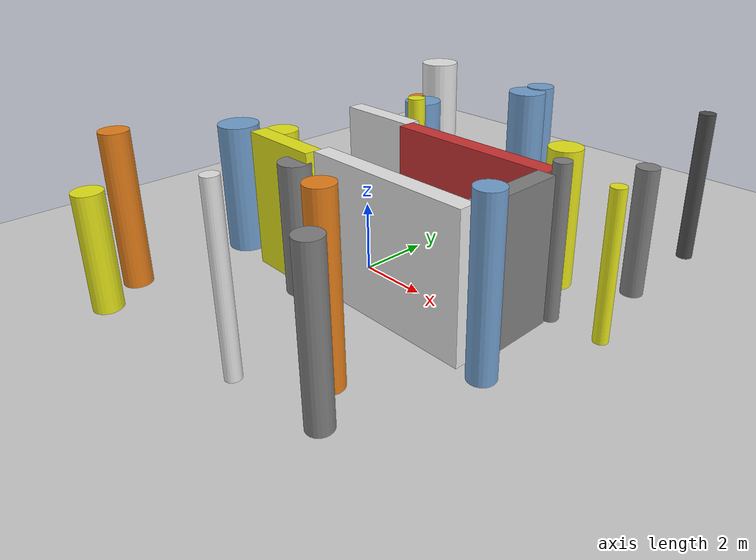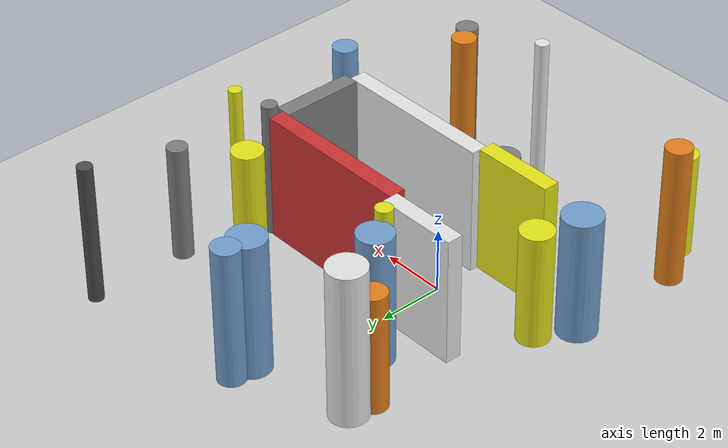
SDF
<?xml version='1.0'?>
<sdf version='1.6'>
  <world name='routeA_rl_v1__dense_recovery__rl_val__cul_de_sac_trap__000105'>
    <!-- Sun light -->
    <light name='sun' type='directional'>
      <cast_shadows>1</cast_shadows>
      <pose>0 0 10 0 0 0</pose>
      <diffuse>0.8 0.8 0.8 1</diffuse>
      <specular>0.2 0.2 0.2 1</specular>
      <attenuation>
        <range>1000</range>
        <constant>0.9</constant>
        <linear>0.01</linear>
        <quadratic>0.001</quadratic>
      </attenuation>
      <direction>-0.5 0.1 -0.9</direction>
    </light>

    <!-- Ground plane -->
    <model name='ground_plane'>
      <static>1</static>
      <link name='link'>
        <collision name='collision'>
          <geometry>
            <plane>
              <normal>0 0 1</normal>
              <size>100 100</size>
            </plane>
          </geometry>
          <surface>
            <contact>
              <collide_bitmask>65535</collide_bitmask>
              <ode/>
            </contact>
            <friction>
              <ode>
                <mu>100</mu>
                <mu2>50</mu2>
              </ode>
              <torsional><ode/></torsional>
            </friction>
            <bounce/>
          </surface>
          <max_contacts>10</max_contacts>
        </collision>
        <visual name='visual'>
          <cast_shadows>0</cast_shadows>
          <geometry>
            <plane>
              <normal>0 0 1</normal>
              <size>100 100</size>
            </plane>
          </geometry>
          <material>
            <script>
              <uri>file://media/materials/scripts/gazebo.material</uri>
              <n>Gazebo/Grey</n>
            </script>
          </material>
        </visual>
      </link>
    </model>

    <!-- Environment -->
    <magnetic_field>6e-06 2.3e-05 -4.2e-05</magnetic_field>
    <atmosphere type='adiabatic'/>
    <physics name='default_physics' default='0' type='ode'>
      <gravity>0 0 -9.8</gravity>
      <max_step_size>0.004</max_step_size>
      <real_time_factor>1</real_time_factor>
      <real_time_update_rate>250</real_time_update_rate>
    </physics>
    <scene>
      <ambient>0.4 0.4 0.4 1</ambient>
      <background>0.7 0.7 0.7 1</background>
      <shadows>1</shadows>
    </scene>
    <wind/>
    <spherical_coordinates>
      <surface_model>EARTH_WGS84</surface_model>
      <latitude_deg>0</latitude_deg>
      <longitude_deg>0</longitude_deg>
      <elevation>0</elevation>
      <heading_deg>0</heading_deg>
    </spherical_coordinates>

    <!-- ============ OBSTACLES (25) ============ -->
    <model name='trap_side_l'>
      <static>1</static>
      <link name='link'>
        <visual name='visual'>
          <geometry>
            <box>
              <size>5.0000 0.5000 4.0000</size>
            </box>
          </geometry>
          <material>
            <script>
              <n>Gazebo/White</n>
              <uri>file://media/materials/scripts/gazebo.material</uri>
            </script>
            <ambient>0.9 0.9 0.9 1</ambient>
          </material>
        </visual>
        <collision name='collision'>
          <geometry>
            <box>
              <size>5.0000 0.5000 4.0000</size>
            </box>
          </geometry>
          <max_contacts>10</max_contacts>
          <surface>
            <contact><ode/></contact>
            <bounce/>
            <friction>
              <ode><mu>1</mu><mu2>1</mu2></ode>
              <torsional><ode/></torsional>
            </friction>
          </surface>
        </collision>
      </link>
      <pose>2.5000 -1.5000 2.0000 0 0 0.0000</pose>
    </model>

    <model name='trap_side_r'>
      <static>1</static>
      <link name='link'>
        <visual name='visual'>
          <geometry>
            <box>
              <size>5.0000 0.5000 4.0000</size>
            </box>
          </geometry>
          <material>
            <script>
              <n>Gazebo/Red</n>
              <uri>file://media/materials/scripts/gazebo.material</uri>
            </script>
            <ambient>0.8 0.2 0.2 1</ambient>
          </material>
        </visual>
        <collision name='collision'>
          <geometry>
            <box>
              <size>5.0000 0.5000 4.0000</size>
            </box>
          </geometry>
          <max_contacts>10</max_contacts>
          <surface>
            <contact><ode/></contact>
            <bounce/>
            <friction>
              <ode><mu>1</mu><mu2>1</mu2></ode>
              <torsional><ode/></torsional>
            </friction>
          </surface>
        </collision>
      </link>
      <pose>2.5000 1.5000 2.0000 0 0 0.0000</pose>
    </model>

    <model name='trap_back'>
      <static>1</static>
      <link name='link'>
        <visual name='visual'>
          <geometry>
            <box>
              <size>0.5000 2.5000 4.0000</size>
            </box>
          </geometry>
          <material>
            <script>
              <n>Gazebo/Grey</n>
              <uri>file://media/materials/scripts/gazebo.material</uri>
            </script>
            <ambient>0.5 0.5 0.5 1</ambient>
          </material>
        </visual>
        <collision name='collision'>
          <geometry>
            <box>
              <size>0.5000 2.5000 4.0000</size>
            </box>
          </geometry>
          <max_contacts>10</max_contacts>
          <surface>
            <contact><ode/></contact>
            <bounce/>
            <friction>
              <ode><mu>1</mu><mu2>1</mu2></ode>
              <torsional><ode/></torsional>
            </friction>
          </surface>
        </collision>
      </link>
      <pose>5.0000 0.0000 2.0000 0 0 0.0000</pose>
    </model>

    <model name='trap_funnel_l'>
      <static>1</static>
      <link name='link'>
        <visual name='visual'>
          <geometry>
            <box>
              <size>2.5000 0.5000 4.0000</size>
            </box>
          </geometry>
          <material>
            <script>
              <n>Gazebo/Yellow</n>
              <uri>file://media/materials/scripts/gazebo.material</uri>
            </script>
            <ambient>0.9 0.9 0.1 1</ambient>
          </material>
        </visual>
        <collision name='collision'>
          <geometry>
            <box>
              <size>2.5000 0.5000 4.0000</size>
            </box>
          </geometry>
          <max_contacts>10</max_contacts>
          <surface>
            <contact><ode/></contact>
            <bounce/>
            <friction>
              <ode><mu>1</mu><mu2>1</mu2></ode>
              <torsional><ode/></torsional>
            </friction>
          </surface>
        </collision>
      </link>
      <pose>-1.2500 -1.7500 2.0000 0 0 0.0000</pose>
    </model>

    <model name='trap_funnel_r'>
      <static>1</static>
      <link name='link'>
        <visual name='visual'>
          <geometry>
            <box>
              <size>2.5000 0.5000 4.0000</size>
            </box>
          </geometry>
          <material>
            <script>
              <n>Gazebo/White</n>
              <uri>file://media/materials/scripts/gazebo.material</uri>
            </script>
            <ambient>0.9 0.9 0.9 1</ambient>
          </material>
        </visual>
        <collision name='collision'>
          <geometry>
            <box>
              <size>2.5000 0.5000 4.0000</size>
            </box>
          </geometry>
          <max_contacts>10</max_contacts>
          <surface>
            <contact><ode/></contact>
            <bounce/>
            <friction>
              <ode><mu>1</mu><mu2>1</mu2></ode>
              <torsional><ode/></torsional>
            </friction>
          </surface>
        </collision>
      </link>
      <pose>-1.2500 1.7500 2.0000 0 0 0.0000</pose>
    </model>

    <model name='trap_scatter_0'>
      <static>1</static>
      <link name='link'>
        <visual name='visual'>
          <geometry>
            <cylinder>
              <radius>0.2274</radius>
              <length>4.4171</length>
            </cylinder>
          </geometry>
          <material>
            <script>
              <n>Gazebo/DarkGrey</n>
              <uri>file://media/materials/scripts/gazebo.material</uri>
            </script>
            <ambient>0.3 0.3 0.3 1</ambient>
          </material>
        </visual>
        <collision name='collision'>
          <geometry>
            <cylinder>
              <radius>0.2274</radius>
              <length>4.4171</length>
            </cylinder>
          </geometry>
          <max_contacts>10</max_contacts>
          <surface>
            <contact><ode/></contact>
            <bounce/>
            <friction>
              <ode><mu>1</mu><mu2>1</mu2></ode>
              <torsional><ode/></torsional>
            </friction>
          </surface>
        </collision>
      </link>
      <pose>6.0343 7.2273 2.2085 0 0 0.0000</pose>
    </model>

    <model name='trap_scatter_1'>
      <static>1</static>
      <link name='link'>
        <visual name='visual'>
          <geometry>
            <cylinder>
              <radius>0.3998</radius>
              <length>4.4190</length>
            </cylinder>
          </geometry>
          <material>
            <script>
              <n>Gazebo/Orange</n>
              <uri>file://media/materials/scripts/gazebo.material</uri>
            </script>
            <ambient>0.9 0.5 0.1 1</ambient>
          </material>
        </visual>
        <collision name='collision'>
          <geometry>
            <cylinder>
              <radius>0.3998</radius>
              <length>4.4190</length>
            </cylinder>
          </geometry>
          <max_contacts>10</max_contacts>
          <surface>
            <contact><ode/></contact>
            <bounce/>
            <friction>
              <ode><mu>1</mu><mu2>1</mu2></ode>
              <torsional><ode/></torsional>
            </friction>
          </surface>
        </collision>
      </link>
      <pose>-3.9107 -5.1439 2.2095 0 0 0.0000</pose>
    </model>

    <model name='trap_scatter_2'>
      <static>1</static>
      <link name='link'>
        <visual name='visual'>
          <geometry>
            <cylinder>
              <radius>0.2564</radius>
              <length>4.4281</length>
            </cylinder>
          </geometry>
          <material>
            <script>
              <n>Gazebo/Yellow</n>
              <uri>file://media/materials/scripts/gazebo.material</uri>
            </script>
            <ambient>0.9 0.9 0.1 1</ambient>
          </material>
        </visual>
        <collision name='collision'>
          <geometry>
            <cylinder>
              <radius>0.2564</radius>
              <length>4.4281</length>
            </cylinder>
          </geometry>
          <max_contacts>10</max_contacts>
          <surface>
            <contact><ode/></contact>
            <bounce/>
            <friction>
              <ode><mu>1</mu><mu2>1</mu2></ode>
              <torsional><ode/></torsional>
            </friction>
          </surface>
        </collision>
      </link>
      <pose>-0.6782 2.5787 2.2141 0 0 0.0000</pose>
    </model>

    <model name='trap_scatter_3'>
      <static>1</static>
      <link name='link'>
        <visual name='visual'>
          <geometry>
            <cylinder>
              <radius>0.5699</radius>
              <length>4.3054</length>
            </cylinder>
          </geometry>
          <material>
            <script>
              <n>Gazebo/Blue</n>
              <uri>file://media/materials/scripts/gazebo.material</uri>
            </script>
            <ambient>0.447 0.624 0.812 1</ambient>
          </material>
        </visual>
        <collision name='collision'>
          <geometry>
            <cylinder>
              <radius>0.5699</radius>
              <length>4.3054</length>
            </cylinder>
          </geometry>
          <max_contacts>10</max_contacts>
          <surface>
            <contact><ode/></contact>
            <bounce/>
            <friction>
              <ode><mu>1</mu><mu2>1</mu2></ode>
              <torsional><ode/></torsional>
            </friction>
          </surface>
        </collision>
      </link>
      <pose>0.8698 5.9080 2.1527 0 0 0.0000</pose>
    </model>

    <model name='trap_scatter_5'>
      <static>1</static>
      <link name='link'>
        <visual name='visual'>
          <geometry>
            <cylinder>
              <radius>0.2108</radius>
              <length>4.9063</length>
            </cylinder>
          </geometry>
          <material>
            <script>
              <n>Gazebo/White</n>
              <uri>file://media/materials/scripts/gazebo.material</uri>
            </script>
            <ambient>0.9 0.9 0.9 1</ambient>
          </material>
        </visual>
        <collision name='collision'>
          <geometry>
            <cylinder>
              <radius>0.2108</radius>
              <length>4.9063</length>
            </cylinder>
          </geometry>
          <max_contacts>10</max_contacts>
          <surface>
            <contact><ode/></contact>
            <bounce/>
            <friction>
              <ode><mu>1</mu><mu2>1</mu2></ode>
              <torsional><ode/></torsional>
            </friction>
          </surface>
        </collision>
      </link>
      <pose>1.7169 -5.5528 2.4532 0 0 0.0000</pose>
    </model>

    <model name='trap_scatter_6'>
      <static>1</static>
      <link name='link'>
        <visual name='visual'>
          <geometry>
            <cylinder>
              <radius>0.3734</radius>
              <length>4.6574</length>
            </cylinder>
          </geometry>
          <material>
            <script>
              <n>Gazebo/Blue</n>
              <uri>file://media/materials/scripts/gazebo.material</uri>
            </script>
            <ambient>0.447 0.624 0.812 1</ambient>
          </material>
        </visual>
        <collision name='collision'>
          <geometry>
            <cylinder>
              <radius>0.3734</radius>
              <length>4.6574</length>
            </cylinder>
          </geometry>
          <max_contacts>10</max_contacts>
          <surface>
            <contact><ode/></contact>
            <bounce/>
            <friction>
              <ode><mu>1</mu><mu2>1</mu2></ode>
              <torsional><ode/></torsional>
            </friction>
          </surface>
        </collision>
      </link>
      <pose>5.6079 -1.5673 2.3287 0 0 0.0000</pose>
    </model>

    <model name='trap_scatter_7'>
      <static>1</static>
      <link name='link'>
        <visual name='visual'>
          <geometry>
            <cylinder>
              <radius>0.4994</radius>
              <length>3.5645</length>
            </cylinder>
          </geometry>
          <material>
            <script>
              <n>Gazebo/Yellow</n>
              <uri>file://media/materials/scripts/gazebo.material</uri>
            </script>
            <ambient>0.9 0.9 0.1 1</ambient>
          </material>
        </visual>
        <collision name='collision'>
          <geometry>
            <cylinder>
              <radius>0.4994</radius>
              <length>3.5645</length>
            </cylinder>
          </geometry>
          <max_contacts>10</max_contacts>
          <surface>
            <contact><ode/></contact>
            <bounce/>
            <friction>
              <ode><mu>1</mu><mu2>1</mu2></ode>
              <torsional><ode/></torsional>
            </friction>
          </surface>
        </collision>
      </link>
      <pose>-3.2209 -0.5210 1.7823 0 0 0.0000</pose>
    </model>

    <model name='trap_scatter_10'>
      <static>1</static>
      <link name='link'>
        <visual name='visual'>
          <geometry>
            <cylinder>
              <radius>0.5740</radius>
              <length>4.8155</length>
            </cylinder>
          </geometry>
          <material>
            <script>
              <n>Gazebo/White</n>
              <uri>file://media/materials/scripts/gazebo.material</uri>
            </script>
            <ambient>0.9 0.9 0.9 1</ambient>
          </material>
        </visual>
        <collision name='collision'>
          <geometry>
            <cylinder>
              <radius>0.5740</radius>
              <length>4.8155</length>
            </cylinder>
          </geometry>
          <max_contacts>10</max_contacts>
          <surface>
            <contact><ode/></contact>
            <bounce/>
            <friction>
              <ode><mu>1</mu><mu2>1</mu2></ode>
              <torsional><ode/></torsional>
            </friction>
          </surface>
        </collision>
      </link>
      <pose>-2.2923 5.2637 2.4078 0 0 0.0000</pose>
    </model>

    <model name='trap_scatter_11'>
      <static>1</static>
      <link name='link'>
        <visual name='visual'>
          <geometry>
            <cylinder>
              <radius>0.3076</radius>
              <length>3.6488</length>
            </cylinder>
          </geometry>
          <material>
            <script>
              <n>Gazebo/Grey</n>
              <uri>file://media/materials/scripts/gazebo.material</uri>
            </script>
            <ambient>0.5 0.5 0.5 1</ambient>
          </material>
        </visual>
        <collision name='collision'>
          <geometry>
            <cylinder>
              <radius>0.3076</radius>
              <length>3.6488</length>
            </cylinder>
          </geometry>
          <max_contacts>10</max_contacts>
          <surface>
            <contact><ode/></contact>
            <bounce/>
            <friction>
              <ode><mu>1</mu><mu2>1</mu2></ode>
              <torsional><ode/></torsional>
            </friction>
          </surface>
        </collision>
      </link>
      <pose>6.0272 4.1903 1.8244 0 0 0.0000</pose>
    </model>

    <model name='trap_scatter_12'>
      <static>1</static>
      <link name='link'>
        <visual name='visual'>
          <geometry>
            <cylinder>
              <radius>0.3643</radius>
              <length>4.8505</length>
            </cylinder>
          </geometry>
          <material>
            <script>
              <n>Gazebo/Orange</n>
              <uri>file://media/materials/scripts/gazebo.material</uri>
            </script>
            <ambient>0.9 0.5 0.1 1</ambient>
          </material>
        </visual>
        <collision name='collision'>
          <geometry>
            <cylinder>
              <radius>0.3643</radius>
              <length>4.8505</length>
            </cylinder>
          </geometry>
          <max_contacts>10</max_contacts>
          <surface>
            <contact><ode/></contact>
            <bounce/>
            <friction>
              <ode><mu>1</mu><mu2>1</mu2></ode>
              <torsional><ode/></torsional>
            </friction>
          </surface>
        </collision>
      </link>
      <pose>3.4568 -4.1690 2.4252 0 0 0.0000</pose>
    </model>

    <model name='trap_scatter_13'>
      <static>1</static>
      <link name='link'>
        <visual name='visual'>
          <geometry>
            <cylinder>
              <radius>0.3983</radius>
              <length>3.2888</length>
            </cylinder>
          </geometry>
          <material>
            <script>
              <n>Gazebo/Yellow</n>
              <uri>file://media/materials/scripts/gazebo.material</uri>
            </script>
            <ambient>0.9 0.9 0.1 1</ambient>
          </material>
        </visual>
        <collision name='collision'>
          <geometry>
            <cylinder>
              <radius>0.3983</radius>
              <length>3.2888</length>
            </cylinder>
          </geometry>
          <max_contacts>10</max_contacts>
          <surface>
            <contact><ode/></contact>
            <bounce/>
            <friction>
              <ode><mu>1</mu><mu2>1</mu2></ode>
              <torsional><ode/></torsional>
            </friction>
          </surface>
        </collision>
      </link>
      <pose>-3.1753 -6.3074 1.6444 0 0 0.0000</pose>
    </model>

    <model name='trap_scatter_14'>
      <static>1</static>
      <link name='link'>
        <visual name='visual'>
          <geometry>
            <cylinder>
              <radius>0.2385</radius>
              <length>4.2741</length>
            </cylinder>
          </geometry>
          <material>
            <script>
              <n>Gazebo/Grey</n>
              <uri>file://media/materials/scripts/gazebo.material</uri>
            </script>
            <ambient>0.5 0.5 0.5 1</ambient>
          </material>
        </visual>
        <collision name='collision'>
          <geometry>
            <cylinder>
              <radius>0.2385</radius>
              <length>4.2741</length>
            </cylinder>
          </geometry>
          <max_contacts>10</max_contacts>
          <surface>
            <contact><ode/></contact>
            <bounce/>
            <friction>
              <ode><mu>1</mu><mu2>1</mu2></ode>
              <torsional><ode/></torsional>
            </friction>
          </surface>
        </collision>
      </link>
      <pose>5.2077 1.5624 2.1371 0 0 0.0000</pose>
    </model>

    <model name='trap_scatter_16'>
      <static>1</static>
      <link name='link'>
        <visual name='visual'>
          <geometry>
            <cylinder>
              <radius>0.4711</radius>
              <length>3.9848</length>
            </cylinder>
          </geometry>
          <material>
            <script>
              <n>Gazebo/Yellow</n>
              <uri>file://media/materials/scripts/gazebo.material</uri>
            </script>
            <ambient>0.9 0.9 0.1 1</ambient>
          </material>
        </visual>
        <collision name='collision'>
          <geometry>
            <cylinder>
              <radius>0.4711</radius>
              <length>3.9848</length>
            </cylinder>
          </geometry>
          <max_contacts>10</max_contacts>
          <surface>
            <contact><ode/></contact>
            <bounce/>
            <friction>
              <ode><mu>1</mu><mu2>1</mu2></ode>
              <torsional><ode/></torsional>
            </friction>
          </surface>
        </collision>
      </link>
      <pose>4.2209 3.1647 1.9924 0 0 0.0000</pose>
    </model>

    <model name='trap_scatter_17'>
      <static>1</static>
      <link name='link'>
        <visual name='visual'>
          <geometry>
            <cylinder>
              <radius>0.2004</radius>
              <length>4.0562</length>
            </cylinder>
          </geometry>
          <material>
            <script>
              <n>Gazebo/Yellow</n>
              <uri>file://media/materials/scripts/gazebo.material</uri>
            </script>
            <ambient>0.9 0.9 0.1 1</ambient>
          </material>
        </visual>
        <collision name='collision'>
          <geometry>
            <cylinder>
              <radius>0.2004</radius>
              <length>4.0562</length>
            </cylinder>
          </geometry>
          <max_contacts>10</max_contacts>
          <surface>
            <contact><ode/></contact>
            <bounce/>
            <friction>
              <ode><mu>1</mu><mu2>1</mu2></ode>
              <torsional><ode/></torsional>
            </friction>
          </surface>
        </collision>
      </link>
      <pose>6.6863 1.5953 2.0281 0 0 0.0000</pose>
    </model>

    <model name='trap_scatter_18'>
      <static>1</static>
      <link name='link'>
        <visual name='visual'>
          <geometry>
            <cylinder>
              <radius>0.5967</radius>
              <length>3.8582</length>
            </cylinder>
          </geometry>
          <material>
            <script>
              <n>Gazebo/Blue</n>
              <uri>file://media/materials/scripts/gazebo.material</uri>
            </script>
            <ambient>0.447 0.624 0.812 1</ambient>
          </material>
        </visual>
        <collision name='collision'>
          <geometry>
            <cylinder>
              <radius>0.5967</radius>
              <length>3.8582</length>
            </cylinder>
          </geometry>
          <max_contacts>10</max_contacts>
          <surface>
            <contact><ode/></contact>
            <bounce/>
            <friction>
              <ode><mu>1</mu><mu2>1</mu2></ode>
              <torsional><ode/></torsional>
            </friction>
          </surface>
        </collision>
      </link>
      <pose>-3.8167 -1.5903 1.9291 0 0 0.0000</pose>
    </model>

    <model name='trap_scatter_19'>
      <static>1</static>
      <link name='link'>
        <visual name='visual'>
          <geometry>
            <cylinder>
              <radius>0.3329</radius>
              <length>4.3871</length>
            </cylinder>
          </geometry>
          <material>
            <script>
              <n>Gazebo/Grey</n>
              <uri>file://media/materials/scripts/gazebo.material</uri>
            </script>
            <ambient>0.5 0.5 0.5 1</ambient>
          </material>
        </visual>
        <collision name='collision'>
          <geometry>
            <cylinder>
              <radius>0.3329</radius>
              <length>4.3871</length>
            </cylinder>
          </geometry>
          <max_contacts>10</max_contacts>
          <surface>
            <contact><ode/></contact>
            <bounce/>
            <friction>
              <ode><mu>1</mu><mu2>1</mu2></ode>
              <torsional><ode/></torsional>
            </friction>
          </surface>
        </collision>
      </link>
      <pose>4.3693 -5.1556 2.1935 0 0 0.0000</pose>
    </model>

    <model name='trap_scatter_20'>
      <static>1</static>
      <link name='link'>
        <visual name='visual'>
          <geometry>
            <cylinder>
              <radius>0.4015</radius>
              <length>3.7465</length>
            </cylinder>
          </geometry>
          <material>
            <script>
              <n>Gazebo/Orange</n>
              <uri>file://media/materials/scripts/gazebo.material</uri>
            </script>
            <ambient>0.9 0.5 0.1 1</ambient>
          </material>
        </visual>
        <collision name='collision'>
          <geometry>
            <cylinder>
              <radius>0.4015</radius>
              <length>3.7465</length>
            </cylinder>
          </geometry>
          <max_contacts>10</max_contacts>
          <surface>
            <contact><ode/></contact>
            <bounce/>
            <friction>
              <ode><mu>1</mu><mu2>1</mu2></ode>
              <torsional><ode/></torsional>
            </friction>
          </surface>
        </collision>
      </link>
      <pose>-2.4668 4.5444 1.8733 0 0 0.0000</pose>
    </model>

    <model name='trap_scatter_22'>
      <static>1</static>
      <link name='link'>
        <visual name='visual'>
          <geometry>
            <cylinder>
              <radius>0.4224</radius>
              <length>4.3398</length>
            </cylinder>
          </geometry>
          <material>
            <script>
              <n>Gazebo/Blue</n>
              <uri>file://media/materials/scripts/gazebo.material</uri>
            </script>
            <ambient>0.447 0.624 0.812 1</ambient>
          </material>
        </visual>
        <collision name='collision'>
          <geometry>
            <cylinder>
              <radius>0.4224</radius>
              <length>4.3398</length>
            </cylinder>
          </geometry>
          <max_contacts>10</max_contacts>
          <surface>
            <contact><ode/></contact>
            <bounce/>
            <friction>
              <ode><mu>1</mu><mu2>1</mu2></ode>
              <torsional><ode/></torsional>
            </friction>
          </surface>
        </collision>
      </link>
      <pose>0.8598 6.6050 2.1699 0 0 0.0000</pose>
    </model>

    <model name='trap_scatter_23'>
      <static>1</static>
      <link name='link'>
        <visual name='visual'>
          <geometry>
            <cylinder>
              <radius>0.4539</radius>
              <length>3.7228</length>
            </cylinder>
          </geometry>
          <material>
            <script>
              <n>Gazebo/Grey</n>
              <uri>file://media/materials/scripts/gazebo.material</uri>
            </script>
            <ambient>0.5 0.5 0.5 1</ambient>
          </material>
        </visual>
        <collision name='collision'>
          <geometry>
            <cylinder>
              <radius>0.4539</radius>
              <length>3.7228</length>
            </cylinder>
          </geometry>
          <max_contacts>10</max_contacts>
          <surface>
            <contact><ode/></contact>
            <bounce/>
            <friction>
              <ode><mu>1</mu><mu2>1</mu2></ode>
              <torsional><ode/></torsional>
            </friction>
          </surface>
        </collision>
      </link>
      <pose>-0.3688 -2.0874 1.8614 0 0 0.0000</pose>
    </model>

    <model name='trap_scatter_24'>
      <static>1</static>
      <link name='link'>
        <visual name='visual'>
          <geometry>
            <cylinder>
              <radius>0.5388</radius>
              <length>4.1475</length>
            </cylinder>
          </geometry>
          <material>
            <script>
              <n>Gazebo/Blue</n>
              <uri>file://media/materials/scripts/gazebo.material</uri>
            </script>
            <ambient>0.447 0.624 0.812 1</ambient>
          </material>
        </visual>
        <collision name='collision'>
          <geometry>
            <cylinder>
              <radius>0.5388</radius>
              <length>4.1475</length>
            </cylinder>
          </geometry>
          <max_contacts>10</max_contacts>
          <surface>
            <contact><ode/></contact>
            <bounce/>
            <friction>
              <ode><mu>1</mu><mu2>1</mu2></ode>
              <torsional><ode/></torsional>
            </friction>
          </surface>
        </collision>
      </link>
      <pose>-1.0558 3.2256 2.0737 0 0 0.0000</pose>
    </model>

    <!-- GUI camera -->
    <gui fullscreen='0'>
      <camera name='user_camera'>
        <pose>-15 0 18 0 0.85 0.15</pose>
        <view_controller>orbit</view_controller>
        <projection_type>perspective</projection_type>
      </camera>
    </gui>
  </world>
</sdf>
